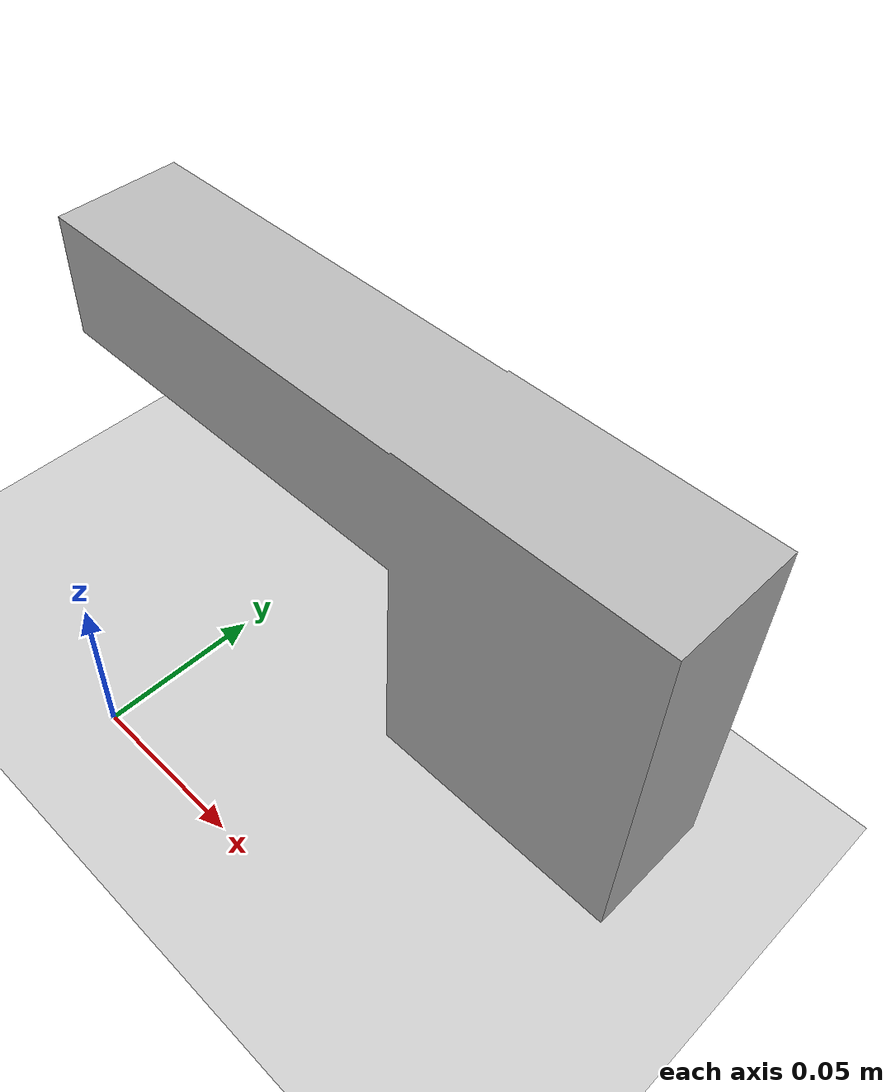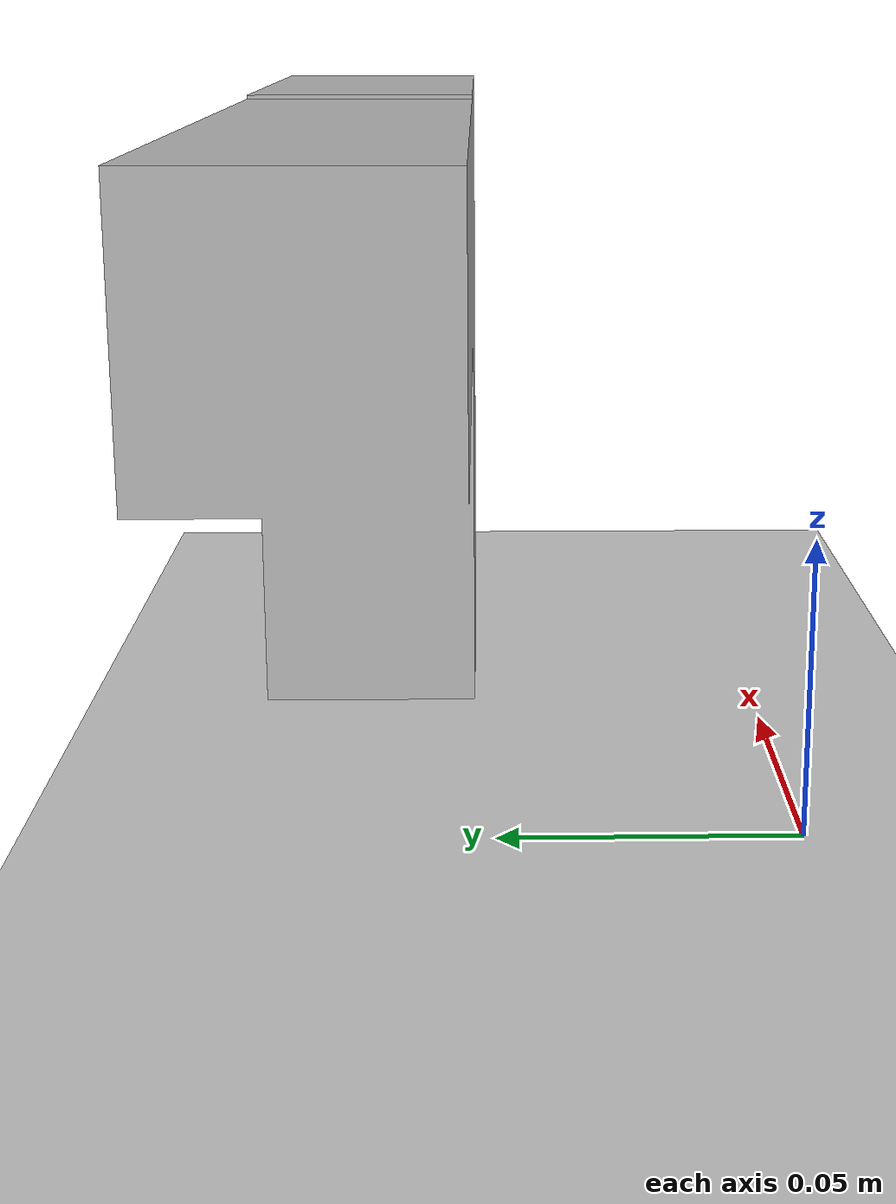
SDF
<!-- P.S. The brackets collision names and the sensor names are the same, except that bracket names
end with _bracket -->
<sdf version='1.7'>
  <world name="default">
    <physics type="ode">
      <max_contacts> 1000 </max_contacts>
    </physics>

    <include>
      <uri>model://ground_plane</uri>
    </include>

    <include>
      <uri>model://sun</uri>
    </include>

    <include>
      <uri>model://cubic_object</uri>
    </include>

  </world>
</sdf>

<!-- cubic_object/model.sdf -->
<sdf version='1.7'>
  <model name='cubic_object'>

    <joint name='world_to_cubic_object_link_joint' type='prismatic'>
      <axis>
        <xyz>0 1 0</xyz>
      </axis>
      <pose relative_to='__model__'>0.06 0.0534 0 0 -0 3.14</pose>
      <parent>world</parent>
      <child>cubic_object_link</child>
    </joint>

    <link name='cubic_object_link'>
      <pose relative_to='world_to_cubic_object_link_joint'>0 0 0 0 -0 0</pose>
      <inertial>
        <pose>-0.00206539 -0.02 0.0707474 0 -0 0</pose>
        <mass>0.129</mass>
        <inertia>
          <ixx>0.000154366</ixx>
          <ixy>0</ixy>
          <ixz>-0.000114977</ixz>
          <iyy>0.000574935</iyy>
          <iyz>0</iyz>
          <izz>0.000454969</izz>
        </inertia>
      </inertial>
      <collision name='cubic_object_collision'>
        <geometry>
          <mesh>
            <scale>1 1 1</scale>
            <uri>model://cubic_object/meshes/cubic_object_resized.stl</uri>
          </mesh>
        </geometry>
        <surface>
          <contact>
            <ode>
              <kp>1e15</kp>
              <kd>1e13</kd>
              <max_vel>0.01</max_vel>
              <min_depth>0.00</min_depth>
            </ode>
          </contact>
        </surface>
        <max_contacts>1000</max_contacts>
      </collision>
      <visual name='cubic_object_visual'>
        <geometry>
          <mesh>
            <scale>1 1 1</scale>
            <uri>model://cubic_object/meshes/cubic_object_resized.stl</uri>
          </mesh>
        </geometry>
      </visual>
    </link>
  </model>
</sdf>
